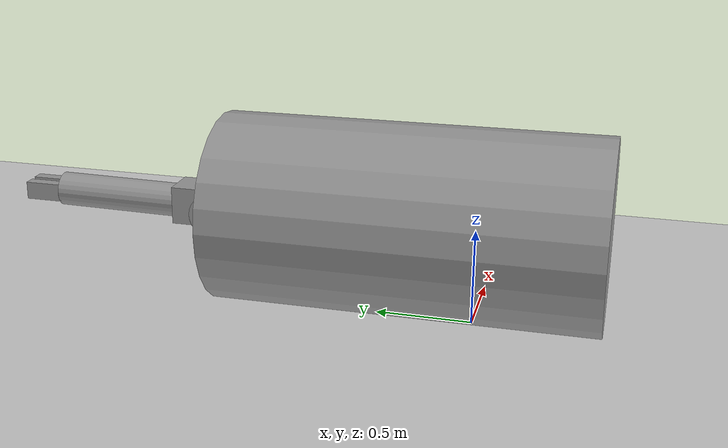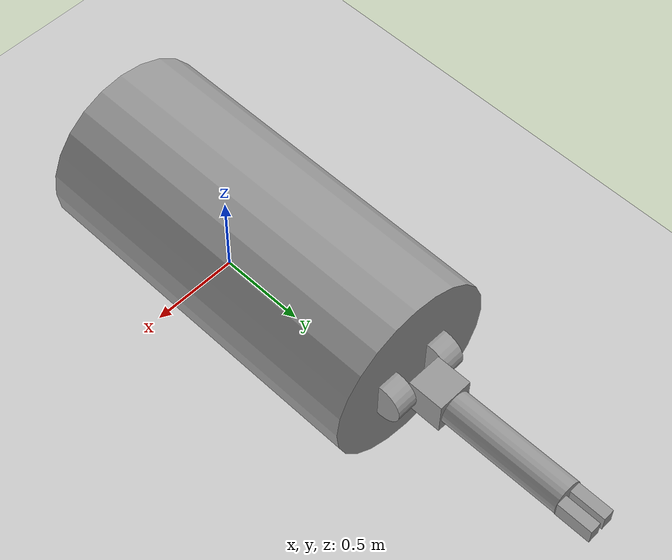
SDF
<sdf version="1.7">
 <world name="default">
  <light name="sun" type="directional">
   <pose>0 0 10 0 -0 0</pose>
   <diffuse>0.8 0.8 0.8 1</diffuse>
   <specular>0.2 0.2 0.2 1</specular>
   <attenuation>
    <range>1000</range>
    <constant>0.9</constant>
    <linear>0.01</linear>
    <quadratic>0.001</quadratic>
   </attenuation>
   <direction>-0.5 0.1 -0.9</direction>
   <spot><inner_angle>0</inner_angle><outer_angle>0</outer_angle><falloff>0</falloff></spot>
  </light>
  <model name="ground_plane">
   <static>1</static>
   <link name="link">
    <collision name="collision">
     <geometry><plane><normal>0 0 1</normal><size>100 100</size></plane></geometry>
     <surface>
      <contact><collide_bitmask>65535</collide_bitmask></contact>
      <friction><ode><mu>100</mu><mu2>50</mu2></ode></friction>
     </surface>
    </collision>
    <visual name="visual">
     <cast_shadows>0</cast_shadows>
     <geometry><plane><normal>0 0 1</normal><size>100 100</size></plane></geometry>
     <material>
      <script><uri>file://media/materials/scripts/gazebo.material</uri><name>Gazebo/Grey</name></script>
     </material>
    </visual>
   </link>
  </model>
  <gravity>0 0 -9.8</gravity>
  <magnetic_field>6e-06 2.3e-05 -4.2e-05</magnetic_field>
  <atmosphere type="adiabatic"/>
  <physics type="ode">
   <max_step_size>0.001</max_step_size>
   <real_time_factor>1</real_time_factor>
   <real_time_update_rate>1000</real_time_update_rate>
  </physics>
  <scene><ambient>0.4 0.4 0.4 1</ambient><background>0.7 0.7 0.7 1</background><shadows>1</shadows></scene>
  <spherical_coordinates>
   <surface_model>EARTH_WGS84</surface_model>
   <latitude_deg>0</latitude_deg>
   <longitude_deg>0</longitude_deg>
   <elevation>0</elevation>
   <heading_deg>0</heading_deg>
  </spherical_coordinates>
  <model name="auv">
   <link name="link_0">
    <inertial>
     <mass>1</mass>
     <inertia><ixx>0.145833</ixx><ixy>0</ixy><ixz>0</ixz><iyy>0.145833</iyy><iyz>0</iyz><izz>0.125</izz></inertia>
    </inertial>
    <pose>0 0.001745 0.506209 1.56735 -0 0</pose>
    <visual name="visual">
     <geometry><cylinder><radius>0.5</radius><length>2</length></cylinder></geometry>
     <material>
      <lighting>1</lighting>
      <script><uri>file://media/materials/scripts/gazebo.material</uri><name>Gazebo/Grey</name></script>
      <shader type="pixel"><normal_map>__default__</normal_map></shader>
      <ambient>0.3 0.3 0.3 1</ambient>
      <diffuse>0.7 0.7 0.7 1</diffuse>
      <specular>0.01 0.01 0.01 1</specular>
      <emissive>0 0 0 1</emissive>
     </material>
    </visual>
    <collision name="collision">
     <geometry><cylinder><radius>0.5</radius><length>2</length></cylinder></geometry>
     <surface>
      <friction>
       <ode><mu>1</mu><mu2>1</mu2><fdir1>0 0 0</fdir1><slip1>0</slip1><slip2>0</slip2></ode>
       <torsional>
        <coefficient>1</coefficient>
        <patch_radius>0</patch_radius>
        <surface_radius>0</surface_radius>
        <use_patch_radius>1</use_patch_radius>
        <ode><slip>0</slip></ode>
       </torsional>
      </friction>
      <bounce><restitution_coefficient>0</restitution_coefficient><threshold>1e+06</threshold></bounce>
      <contact>
       <collide_without_contact>0</collide_without_contact>
       <collide_without_contact_bitmask>1</collide_without_contact_bitmask>
       <collide_bitmask>1</collide_bitmask>
       <ode>
        <soft_cfm>0</soft_cfm>
        <soft_erp>0.2</soft_erp>
        <kp>1e+13</kp>
        <kd>1</kd>
        <max_vel>0.01</max_vel>
        <min_depth>0</min_depth>
       </ode>
       <bullet>
        <split_impulse>1</split_impulse>
        <split_impulse_penetration_threshold>-0.01</split_impulse_penetration_threshold>
        <soft_cfm>0</soft_cfm>
        <soft_erp>0.2</soft_erp>
        <kp>1e+13</kp>
        <kd>1</kd>
       </bullet>
      </contact>
     </surface>
    </collision>
   </link>
   <link name="link_1">
    <inertial>
     <mass>1</mass>
     <inertia>
      <ixx>0.166667</ixx>
      <ixy>0</ixy>
      <ixz>0</ixz>
      <iyy>0.166667</iyy>
      <iyz>0</iyz>
      <izz>0.166667</izz>
     </inertia>
    </inertial>
    <pose>0 1.17833 0.5 0 -0 0</pose>
    <visual name="visual">
     <geometry><box><size>0.2 0.2 0.2</size></box></geometry>
     <material>
      <lighting>1</lighting>
      <script><uri>file://media/materials/scripts/gazebo.material</uri><name>Gazebo/Grey</name></script>
      <shader type="pixel"><normal_map>__default__</normal_map></shader>
      <ambient>0.3 0.3 0.3 1</ambient>
      <diffuse>0.7 0.7 0.7 1</diffuse>
      <specular>0.01 0.01 0.01 1</specular>
      <emissive>0 0 0 1</emissive>
     </material>
    </visual>
    <collision name="collision">
     <geometry><box><size>0.2 0.2 0.2</size></box></geometry>
     <surface>
      <friction>
       <ode><mu>1</mu><mu2>1</mu2><fdir1>0 0 0</fdir1><slip1>0</slip1><slip2>0</slip2></ode>
       <torsional>
        <coefficient>1</coefficient>
        <patch_radius>0</patch_radius>
        <surface_radius>0</surface_radius>
        <use_patch_radius>1</use_patch_radius>
        <ode><slip>0</slip></ode>
       </torsional>
      </friction>
      <bounce><restitution_coefficient>0</restitution_coefficient><threshold>1e+06</threshold></bounce>
      <contact>
       <collide_without_contact>0</collide_without_contact>
       <collide_without_contact_bitmask>1</collide_without_contact_bitmask>
       <collide_bitmask>1</collide_bitmask>
       <ode>
        <soft_cfm>0</soft_cfm>
        <soft_erp>0.2</soft_erp>
        <kp>1e+13</kp>
        <kd>1</kd>
        <max_vel>0.01</max_vel>
        <min_depth>0</min_depth>
       </ode>
       <bullet>
        <split_impulse>1</split_impulse>
        <split_impulse_penetration_threshold>-0.01</split_impulse_penetration_threshold>
        <soft_cfm>0</soft_cfm>
        <soft_erp>0.2</soft_erp>
        <kp>1e+13</kp>
        <kd>1</kd>
       </bullet>
      </contact>
     </surface>
    </collision>
   </link>
   <link name="link_1_clone">
    <inertial>
     <mass>0.144723</mass>
     <inertia>
      <ixx>0.000590822</ixx>
      <ixy>0</ixy>
      <ixz>0</ixz>
      <iyy>0.000156325</iyy>
      <iyz>0</iyz>
      <izz>0.000530321</izz>
     </inertia>
    </inertial>
    <pose>-0.046287 2.04959 0.501162 0 -0 0</pose>
    <visual name="visual">
     <geometry><box><size>0.063029 0.2 0.094812</size></box></geometry>
     <material>
      <lighting>1</lighting>
      <script><uri>file://media/materials/scripts/gazebo.material</uri><name>Gazebo/Grey</name></script>
      <shader type="pixel"><normal_map>__default__</normal_map></shader>
      <ambient>0.3 0.3 0.3 1</ambient>
      <diffuse>0.7 0.7 0.7 1</diffuse>
      <specular>0.01 0.01 0.01 1</specular>
      <emissive>0 0 0 1</emissive>
     </material>
    </visual>
    <collision name="collision">
     <geometry><box><size>0.063029 0.2 0.094812</size></box></geometry>
     <surface>
      <friction>
       <ode><mu>1</mu><mu2>1</mu2><fdir1>0 0 0</fdir1><slip1>0</slip1><slip2>0</slip2></ode>
       <torsional>
        <coefficient>1</coefficient>
        <patch_radius>0</patch_radius>
        <surface_radius>0</surface_radius>
        <use_patch_radius>1</use_patch_radius>
        <ode><slip>0</slip></ode>
       </torsional>
      </friction>
      <bounce><restitution_coefficient>0</restitution_coefficient><threshold>1e+06</threshold></bounce>
      <contact>
       <collide_without_contact>0</collide_without_contact>
       <collide_without_contact_bitmask>1</collide_without_contact_bitmask>
       <collide_bitmask>1</collide_bitmask>
       <ode>
        <soft_cfm>0</soft_cfm>
        <soft_erp>0.2</soft_erp>
        <kp>1e+13</kp>
        <kd>1</kd>
        <max_vel>0.01</max_vel>
        <min_depth>0</min_depth>
       </ode>
       <bullet>
        <split_impulse>1</split_impulse>
        <split_impulse_penetration_threshold>-0.01</split_impulse_penetration_threshold>
        <soft_cfm>0</soft_cfm>
        <soft_erp>0.2</soft_erp>
        <kp>1e+13</kp>
        <kd>1</kd>
       </bullet>
      </contact>
     </surface>
    </collision>
   </link>
   <link name="link_1_clone_clone_1">
    <inertial>
     <mass>0.144723</mass>
     <inertia>
      <ixx>0.000590822</ixx>
      <ixy>0</ixy>
      <ixz>0</ixz>
      <iyy>0.000156325</iyy>
      <iyz>0</iyz>
      <izz>0.000530321</izz>
     </inertia>
    </inertial>
    <pose>0.045486 2.04946 0.504095 0 -0 0</pose>
    <visual name="visual">
     <geometry><box><size>0.063029 0.2 0.094812</size></box></geometry>
     <material>
      <lighting>1</lighting>
      <script><uri>file://media/materials/scripts/gazebo.material</uri><name>Gazebo/Grey</name></script>
      <shader type="pixel"><normal_map>__default__</normal_map></shader>
      <ambient>0.3 0.3 0.3 1</ambient>
      <diffuse>0.7 0.7 0.7 1</diffuse>
      <specular>0.01 0.01 0.01 1</specular>
      <emissive>0 0 0 1</emissive>
     </material>
    </visual>
    <collision name="collision">
     <geometry><box><size>0.063029 0.2 0.094812</size></box></geometry>
     <surface>
      <friction>
       <ode><mu>1</mu><mu2>1</mu2><fdir1>0 0 0</fdir1><slip1>0</slip1><slip2>0</slip2></ode>
       <torsional>
        <coefficient>1</coefficient>
        <patch_radius>0</patch_radius>
        <surface_radius>0</surface_radius>
        <use_patch_radius>1</use_patch_radius>
        <ode><slip>0</slip></ode>
       </torsional>
      </friction>
      <bounce><restitution_coefficient>0</restitution_coefficient><threshold>1e+06</threshold></bounce>
      <contact>
       <collide_without_contact>0</collide_without_contact>
       <collide_without_contact_bitmask>1</collide_without_contact_bitmask>
       <collide_bitmask>1</collide_bitmask>
       <ode>
        <soft_cfm>0</soft_cfm>
        <soft_erp>0.2</soft_erp>
        <kp>1e+13</kp>
        <kd>1</kd>
        <max_vel>0.01</max_vel>
        <min_depth>0</min_depth>
       </ode>
       <bullet>
        <split_impulse>1</split_impulse>
        <split_impulse_penetration_threshold>-0.01</split_impulse_penetration_threshold>
        <soft_cfm>0</soft_cfm>
        <soft_erp>0.2</soft_erp>
        <kp>1e+13</kp>
        <kd>1</kd>
       </bullet>
      </contact>
     </surface>
    </collision>
   </link>
   <link name="link_2">
    <inertial>
     <mass>0.00623059</mass>
     <inertia>
      <ixx>2.777e-05</ixx>
      <ixy>0</ixy>
      <ixz>0</ixz>
      <iyy>2.777e-05</iyy>
      <iyz>0</iyz>
      <izz>4.09e-05</izz>
     </inertia>
    </inertial>
    <pose>0.165424 1.02048 0.501372 -1.57032 -0 1.5833</pose>
    <visual name="visual">
     <geometry><cylinder><radius>0.114586</radius><length>0.118696</length></cylinder></geometry>
     <material>
      <lighting>1</lighting>
      <script><uri>file://media/materials/scripts/gazebo.material</uri><name>Gazebo/Grey</name></script>
      <shader type="pixel"><normal_map>__default__</normal_map></shader>
     </material>
    </visual>
    <collision name="collision">
     <geometry><cylinder><radius>0.114586</radius><length>0.118696</length></cylinder></geometry>
     <surface>
      <friction>
       <ode><mu>1</mu><mu2>1</mu2><fdir1>0 0 0</fdir1><slip1>0</slip1><slip2>0</slip2></ode>
       <torsional>
        <coefficient>1</coefficient>
        <patch_radius>0</patch_radius>
        <surface_radius>0</surface_radius>
        <use_patch_radius>1</use_patch_radius>
        <ode><slip>0</slip></ode>
       </torsional>
      </friction>
      <bounce><restitution_coefficient>0</restitution_coefficient><threshold>1e+06</threshold></bounce>
      <contact>
       <collide_without_contact>0</collide_without_contact>
       <collide_without_contact_bitmask>1</collide_without_contact_bitmask>
       <collide_bitmask>1</collide_bitmask>
       <ode>
        <soft_cfm>0</soft_cfm>
        <soft_erp>0.2</soft_erp>
        <kp>1e+13</kp>
        <kd>1</kd>
        <max_vel>0.01</max_vel>
        <min_depth>0</min_depth>
       </ode>
       <bullet>
        <split_impulse>1</split_impulse>
        <split_impulse_penetration_threshold>-0.01</split_impulse_penetration_threshold>
        <soft_cfm>0</soft_cfm>
        <soft_erp>0.2</soft_erp>
        <kp>1e+13</kp>
        <kd>1</kd>
       </bullet>
      </contact>
     </surface>
    </collision>
   </link>
   <link name="link_2_clone">
    <inertial>
     <mass>0.00623059</mass>
     <inertia>
      <ixx>2.777e-05</ixx>
      <ixy>0</ixy>
      <ixz>0</ixz>
      <iyy>2.777e-05</iyy>
      <iyz>0</iyz>
      <izz>4.09e-05</izz>
     </inertia>
    </inertial>
    <pose>-0.161747 1.01981 0.501364 -1.57032 -0 1.5833</pose>
    <visual name="visual">
     <geometry><cylinder><radius>0.114586</radius><length>0.118696</length></cylinder></geometry>
     <material>
      <lighting>1</lighting>
      <script><uri>file://media/materials/scripts/gazebo.material</uri><name>Gazebo/Grey</name></script>
      <shader type="pixel"><normal_map>__default__</normal_map></shader>
     </material>
    </visual>
    <collision name="collision">
     <geometry><cylinder><radius>0.114586</radius><length>0.118696</length></cylinder></geometry>
     <surface>
      <friction>
       <ode><mu>1</mu><mu2>1</mu2><fdir1>0 0 0</fdir1><slip1>0</slip1><slip2>0</slip2></ode>
       <torsional>
        <coefficient>1</coefficient>
        <patch_radius>0</patch_radius>
        <surface_radius>0</surface_radius>
        <use_patch_radius>1</use_patch_radius>
        <ode><slip>0</slip></ode>
       </torsional>
      </friction>
      <bounce><restitution_coefficient>0</restitution_coefficient><threshold>1e+06</threshold></bounce>
      <contact>
       <collide_without_contact>0</collide_without_contact>
       <collide_without_contact_bitmask>1</collide_without_contact_bitmask>
       <collide_bitmask>1</collide_bitmask>
       <ode>
        <soft_cfm>0</soft_cfm>
        <soft_erp>0.2</soft_erp>
        <kp>1e+13</kp>
        <kd>1</kd>
        <max_vel>0.01</max_vel>
        <min_depth>0</min_depth>
       </ode>
       <bullet>
        <split_impulse>1</split_impulse>
        <split_impulse_penetration_threshold>-0.01</split_impulse_penetration_threshold>
        <soft_cfm>0</soft_cfm>
        <soft_erp>0.2</soft_erp>
        <kp>1e+13</kp>
        <kd>1</kd>
       </bullet>
      </contact>
     </surface>
    </collision>
   </link>
   <link name="link_3">
    <inertial>
     <mass>0.0227632</mass>
     <inertia>
      <ixx>0.000965263</ixx>
      <ixy>0</ixy>
      <ixz>0</ixz>
      <iyy>0.000965263</iyy>
      <iyz>0</iyz>
      <izz>9.31033e-05</izz>
     </inertia>
    </inertial>
    <pose>-0.001439 1.60613 0.503514 -1.5586 0 0</pose>
    <visual name="visual">
     <geometry><cylinder><radius>0.0904442</radius><length>0.695926</length></cylinder></geometry>
     <material>
      <lighting>1</lighting>
      <script><uri>file://media/materials/scripts/gazebo.material</uri><name>Gazebo/Grey</name></script>
      <shader type="pixel"/>
     </material>
    </visual>
    <collision name="collision">
     <geometry><cylinder><radius>0.090444</radius><length>0.695926</length></cylinder></geometry>
     <surface>
      <friction>
       <ode><mu>1</mu><mu2>1</mu2><fdir1>0 0 0</fdir1><slip1>0</slip1><slip2>0</slip2></ode>
       <torsional>
        <coefficient>1</coefficient>
        <patch_radius>0</patch_radius>
        <surface_radius>0</surface_radius>
        <use_patch_radius>1</use_patch_radius>
        <ode><slip>0</slip></ode>
       </torsional>
      </friction>
      <bounce><restitution_coefficient>0</restitution_coefficient><threshold>1e+06</threshold></bounce>
      <contact>
       <collide_without_contact>0</collide_without_contact>
       <collide_without_contact_bitmask>1</collide_without_contact_bitmask>
       <collide_bitmask>1</collide_bitmask>
       <ode>
        <soft_cfm>0</soft_cfm>
        <soft_erp>0.2</soft_erp>
        <kp>1e+13</kp>
        <kd>1</kd>
        <max_vel>0.01</max_vel>
        <min_depth>0</min_depth>
       </ode>
       <bullet>
        <split_impulse>1</split_impulse>
        <split_impulse_penetration_threshold>-0.01</split_impulse_penetration_threshold>
        <soft_cfm>0</soft_cfm>
        <soft_erp>0.2</soft_erp>
        <kp>1e+13</kp>
        <kd>1</kd>
       </bullet>
      </contact>
     </surface>
    </collision>
   </link>
   <static>1</static>
   <pose>0.061852 0.340486 0 0 -0 0</pose>
  </model>
 </world>
</sdf>
